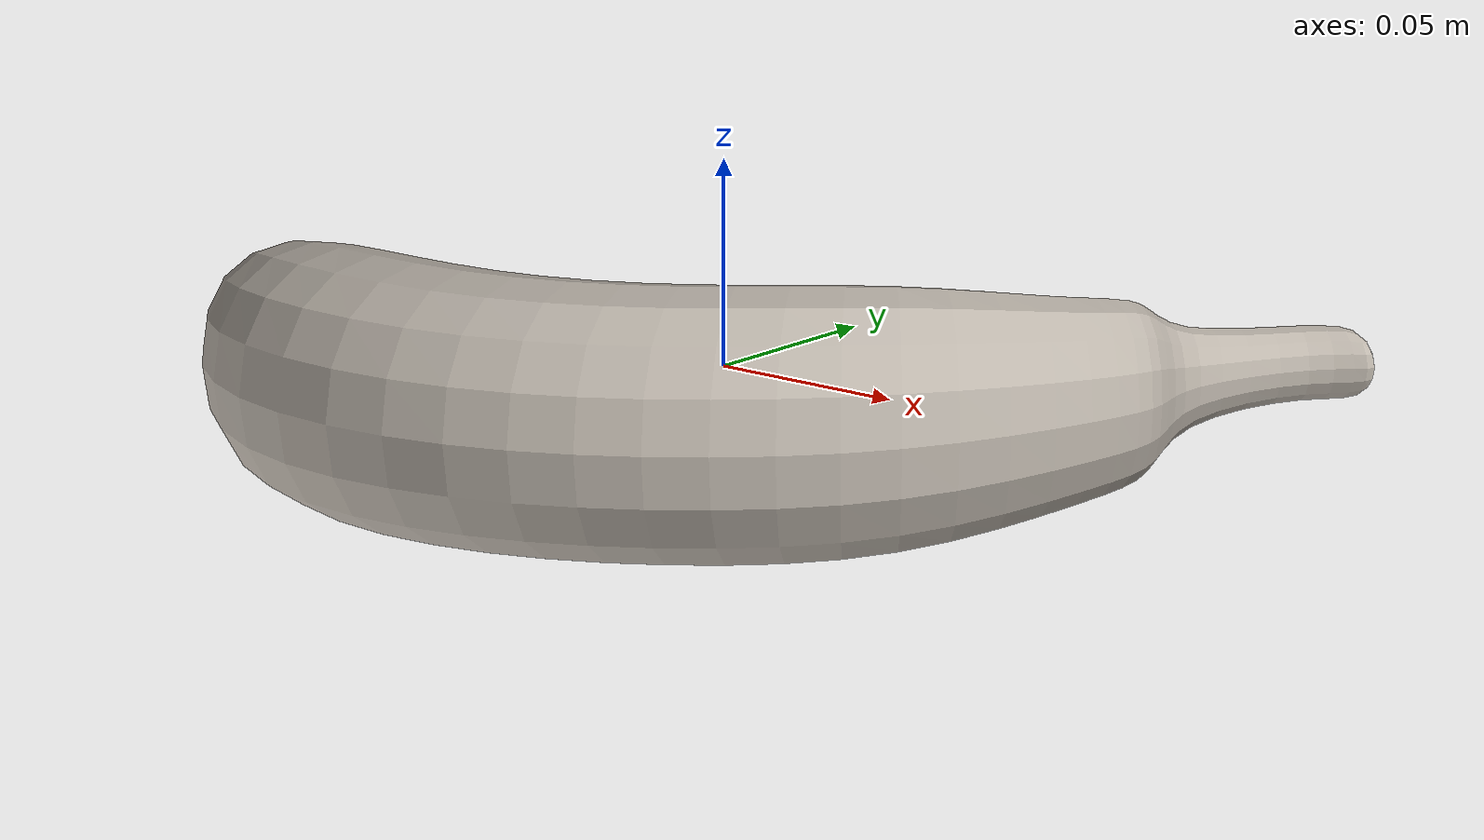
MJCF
<mujoco model="banana_516ef7e9">
  <compiler angle="radian"/>
  <asset>
    <texture type="2d" name="banana_516ef7e9_tex" file="banana_516ef7e9_visual_0.png"/>
    <material name="banana_516ef7e9_mat" texture="banana_516ef7e9_tex"/>
    <mesh name="banana_516ef7e9_visual" content_type="model/obj" file="banana_516ef7e9_visual.obj" scale="-0.775094 1 1"/>
    <mesh name="banana_516ef7e9_c0" content_type="model/obj" file="banana_516ef7e9_c0.obj" scale="-0.775094 1 1"/>
    <mesh name="banana_516ef7e9_c1" content_type="model/obj" file="banana_516ef7e9_c1.obj" scale="-0.775094 1 1"/>
    <mesh name="banana_516ef7e9_c2" content_type="model/obj" file="banana_516ef7e9_c2.obj" scale="-0.775094 1 1"/>
  </asset>
  <worldbody>
    <body name="banana_516ef7e9">
      <freejoint/>
      <geom name="banana_516ef7e9_visual" type="mesh" mesh="banana_516ef7e9_visual" mass="1e-8" contype="0" conaffinity="0" group="2" material="banana_516ef7e9_mat"/>
      <geom name="banana_516ef7e9_c0" type="mesh" mesh="banana_516ef7e9_c0" group="3" density="177.684" friction="0.9 0.05 0.005" condim="4" rgba="0.4 0.5 0.9 0.35"/>
      <geom name="banana_516ef7e9_c1" type="mesh" mesh="banana_516ef7e9_c1" group="3" density="177.684" friction="0.9 0.05 0.005" condim="4" rgba="0.4 0.5 0.9 0.35"/>
      <geom name="banana_516ef7e9_c2" type="mesh" mesh="banana_516ef7e9_c2" group="3" density="177.684" friction="0.9 0.05 0.005" condim="4" rgba="0.4 0.5 0.9 0.35"/>
    </body>
  </worldbody>
</mujoco>
